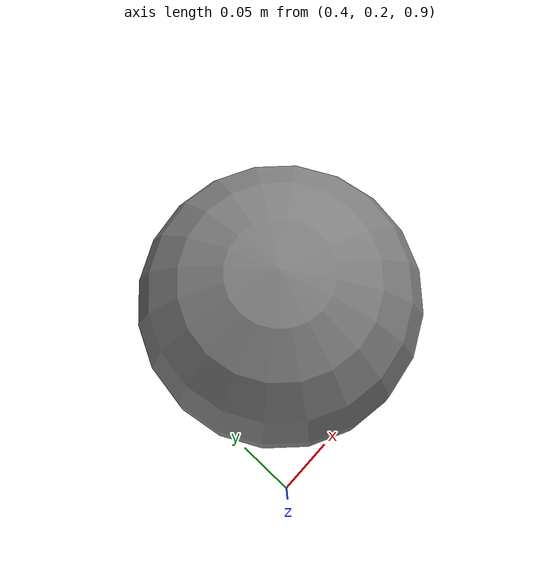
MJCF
<mujoco model="hinge_slide_one_body">
            <option gravity="0 0 -9.81" timestep="0.001"/>
            <worldbody>
                <body name="link" pos="0 0 1">
                    <joint type="hinge" axis="0 0 1" name="hinge_z"/>
                    <joint type="slide" axis="1 0 0" name="slide_x"/>
                    <geom type="sphere" size="0.1" pos="0.5 0.3 0" mass="1.0"/>
                </body>
            </worldbody>
        </mujoco>
